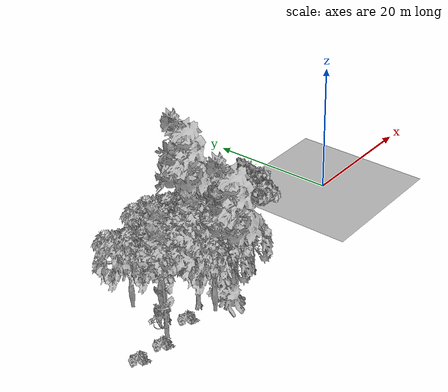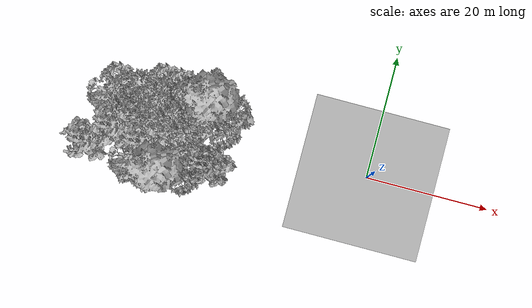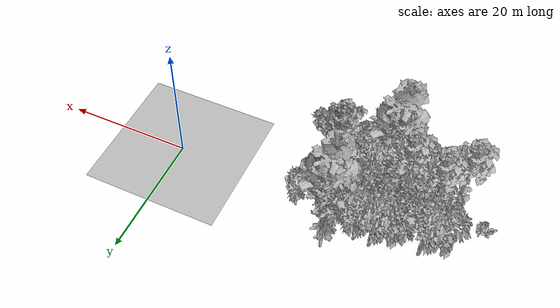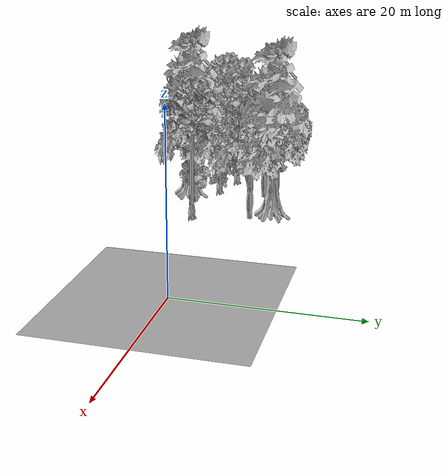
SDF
<sdf version="1.7">
 <world name="default">
  <model name="ground_plane">
   <static>1</static>
   <link name="link">
    <collision name="collision">
     <geometry><plane><normal>0 0 1</normal><size>100 100</size></plane></geometry>
     <surface><contact><ode><min_depth>0.01</min_depth><max_vel>0</max_vel></ode></contact></surface>
    </collision>
    <visual name="grass">
     <cast_shadows>0</cast_shadows>
     <geometry>
      <mesh>
       <scale>0.41000000000000003 0.41000000000000003 0.1</scale>
       <uri>file://grass_plane/meshes/grass_plane.dae</uri>
      </mesh>
     </geometry>
    </visual>
   </link>
  </model>
  <model name="Tree 58">
   <static>1</static>
   <pose>-29.136478285314066 -5.744824546744688 0 1.57079 -0 0</pose>
   <link name="link">
    <collision name="collision">
     <geometry><mesh><scale>5 5 5</scale><uri>model://tree_2/meshes/tree_2.obj</uri></mesh></geometry>
    </collision>
    <visual name="visual">
     <geometry><mesh><scale>5 5 5</scale><uri>model://tree_2/meshes/tree_2.obj</uri></mesh></geometry>
    </visual>
   </link>
  </model>
  <model name="Tree 91">
   <static>1</static>
   <pose>-30.870508727637063 1.2729692239023649 0 1.57079 -0 0</pose>
   <link name="link">
    <collision name="collision">
     <geometry><mesh><scale>5 5 5</scale><uri>model://tree_2/meshes/tree_2.obj</uri></mesh></geometry>
    </collision>
    <visual name="visual">
     <geometry><mesh><scale>5 5 5</scale><uri>model://tree_2/meshes/tree_2.obj</uri></mesh></geometry>
    </visual>
   </link>
  </model>
  <model name="Tree 101">
   <static>1</static>
   <pose>-34.530308470520154 -6.511901051801935 0 1.57079 -0 0</pose>
   <link name="link">
    <collision name="collision">
     <geometry><mesh><scale>5 5 5</scale><uri>model://tree_2/meshes/tree_2.obj</uri></mesh></geometry>
    </collision>
    <visual name="visual">
     <geometry><mesh><scale>5 5 5</scale><uri>model://tree_2/meshes/tree_2.obj</uri></mesh></geometry>
    </visual>
   </link>
  </model>
  <model name="Tree 121">
   <static>1</static>
   <pose>-26.580350504393422 5.078206684629308 0 1.57079 -0 0</pose>
   <link name="link">
    <collision name="collision">
     <geometry><mesh><scale>5 5 5</scale><uri>model://tree_4/meshes/tree_4.obj</uri></mesh></geometry>
    </collision>
    <visual name="visual">
     <geometry><mesh><scale>5 5 5</scale><uri>model://tree_4/meshes/tree_4.obj</uri></mesh></geometry>
    </visual>
   </link>
  </model>
  <model name="Tree 123">
   <static>1</static>
   <pose>-33.37134839626058 2.638206725450921 0 1.57079 -0 0</pose>
   <link name="link">
    <collision name="collision">
     <geometry><mesh><scale>5 5 5</scale><uri>model://tree_2/meshes/tree_2.obj</uri></mesh></geometry>
    </collision>
    <visual name="visual">
     <geometry><mesh><scale>5 5 5</scale><uri>model://tree_2/meshes/tree_2.obj</uri></mesh></geometry>
    </visual>
   </link>
  </model>
  <model name="Tree 157">
   <static>1</static>
   <pose>-39.60856064833061 -2.6644926782317313 0 1.57079 -0 0</pose>
   <link name="link">
    <collision name="collision">
     <geometry><mesh><scale>5 5 5</scale><uri>model://tree_9/meshes/tree_9.obj</uri></mesh></geometry>
    </collision>
    <visual name="visual">
     <geometry><mesh><scale>5 5 5</scale><uri>model://tree_9/meshes/tree_9.obj</uri></mesh></geometry>
    </visual>
   </link>
  </model>
  <model name="Tree 187">
   <static>1</static>
   <pose>-24.241845685283067 -4.757598883458279 0 1.57079 -0 0</pose>
   <link name="link">
    <collision name="collision">
     <geometry><mesh><scale>5 5 5</scale><uri>model://tree_9/meshes/tree_9.obj</uri></mesh></geometry>
    </collision>
    <visual name="visual">
     <geometry><mesh><scale>5 5 5</scale><uri>model://tree_9/meshes/tree_9.obj</uri></mesh></geometry>
    </visual>
   </link>
  </model>
  <model name="Tree 195">
   <static>1</static>
   <pose>-24.764961347988365 2.653694080876015 0 1.57079 -0 0</pose>
   <link name="link">
    <collision name="collision">
     <geometry><mesh><scale>5 5 5</scale><uri>model://tree_2/meshes/tree_2.obj</uri></mesh></geometry>
    </collision>
    <visual name="visual">
     <geometry><mesh><scale>5 5 5</scale><uri>model://tree_2/meshes/tree_2.obj</uri></mesh></geometry>
    </visual>
   </link>
  </model>
  <model name="Tree 224">
   <static>1</static>
   <pose>-24.117555800730162 -4.76062071663231 0 1.57079 -0 0</pose>
   <link name="link">
    <collision name="collision">
     <geometry><mesh><scale>5 5 5</scale><uri>model://tree_9/meshes/tree_9.obj</uri></mesh></geometry>
    </collision>
    <visual name="visual">
     <geometry><mesh><scale>5 5 5</scale><uri>model://tree_9/meshes/tree_9.obj</uri></mesh></geometry>
    </visual>
   </link>
  </model>
  <model name="Tree 236">
   <static>1</static>
   <pose>-34.77374842129693 -3.9292000744052373 0 1.57079 -0 0</pose>
   <link name="link">
    <collision name="collision">
     <geometry><mesh><scale>5 5 5</scale><uri>model://tree_9/meshes/tree_9.obj</uri></mesh></geometry>
    </collision>
    <visual name="visual">
     <geometry><mesh><scale>5 5 5</scale><uri>model://tree_9/meshes/tree_9.obj</uri></mesh></geometry>
    </visual>
   </link>
  </model>
  <model name="Tree 243">
   <static>1</static>
   <pose>-38.4408915715711 -0.5570903907103144 0 1.57079 -0 0</pose>
   <link name="link">
    <collision name="collision">
     <geometry><mesh><scale>5 5 5</scale><uri>model://tree_2/meshes/tree_2.obj</uri></mesh></geometry>
    </collision>
    <visual name="visual">
     <geometry><mesh><scale>5 5 5</scale><uri>model://tree_2/meshes/tree_2.obj</uri></mesh></geometry>
    </visual>
   </link>
  </model>
  <model name="Tree 279">
   <static>1</static>
   <pose>-32.016383882359634 -7.2504381721655875 0 1.57079 -0 0</pose>
   <link name="link">
    <collision name="collision">
     <geometry><mesh><scale>5 5 5</scale><uri>model://tree_4/meshes/tree_4.obj</uri></mesh></geometry>
    </collision>
    <visual name="visual">
     <geometry><mesh><scale>5 5 5</scale><uri>model://tree_4/meshes/tree_4.obj</uri></mesh></geometry>
    </visual>
   </link>
  </model>
  <model name="Tree 325">
   <static>1</static>
   <pose>-31.035509424820894 4.198205151836888 0 1.57079 -0 0</pose>
   <link name="link">
    <collision name="collision">
     <geometry><mesh><scale>5 5 5</scale><uri>model://tree_2/meshes/tree_2.obj</uri></mesh></geometry>
    </collision>
    <visual name="visual">
     <geometry><mesh><scale>5 5 5</scale><uri>model://tree_2/meshes/tree_2.obj</uri></mesh></geometry>
    </visual>
   </link>
  </model>
  <model name="Tree 348">
   <static>1</static>
   <pose>-42.94926867114103 -5.672406579600484 0 1.57079 -0 0</pose>
   <link name="link">
    <collision name="collision">
     <geometry><mesh><scale>5 5 5</scale><uri>model://tree_9/meshes/tree_9.obj</uri></mesh></geometry>
    </collision>
    <visual name="visual">
     <geometry><mesh><scale>5 5 5</scale><uri>model://tree_9/meshes/tree_9.obj</uri></mesh></geometry>
    </visual>
   </link>
  </model>
  <model name="Tree 364">
   <static>1</static>
   <pose>-40.4232232530459 2.6903171464660716 0 1.57079 -0 0</pose>
   <link name="link">
    <collision name="collision">
     <geometry><mesh><scale>5 5 5</scale><uri>model://tree_2/meshes/tree_2.obj</uri></mesh></geometry>
    </collision>
    <visual name="visual">
     <geometry><mesh><scale>5 5 5</scale><uri>model://tree_2/meshes/tree_2.obj</uri></mesh></geometry>
    </visual>
   </link>
  </model>
  <model name="Tree 409">
   <static>1</static>
   <pose>-32.4980487806453 -6.9439238288082095 0 1.57079 -0 0</pose>
   <link name="link">
    <collision name="collision">
     <geometry><mesh><scale>5 5 5</scale><uri>model://tree_9/meshes/tree_9.obj</uri></mesh></geometry>
    </collision>
    <visual name="visual">
     <geometry><mesh><scale>5 5 5</scale><uri>model://tree_9/meshes/tree_9.obj</uri></mesh></geometry>
    </visual>
   </link>
  </model>
  <model name="Tree 433">
   <static>1</static>
   <pose>-33.45619310741938 4.303940181511322 0 1.57079 -0 0</pose>
   <link name="link">
    <collision name="collision">
     <geometry><mesh><scale>5 5 5</scale><uri>model://tree_2/meshes/tree_2.obj</uri></mesh></geometry>
    </collision>
    <visual name="visual">
     <geometry><mesh><scale>5 5 5</scale><uri>model://tree_2/meshes/tree_2.obj</uri></mesh></geometry>
    </visual>
   </link>
  </model>
  <model name="Bush 27">
   <static>1</static>
   <pose>-32.633638954893854 -7.055354760553776 0 1.57079 -0 0</pose>
   <link name="link">
    <collision name="collision">
     <geometry><mesh><scale>2 2 2</scale><uri>model://bush_1/meshes/bush_1.obj</uri></mesh></geometry>
    </collision>
    <visual name="visual">
     <geometry><mesh><scale>5 5 5</scale><uri>model://bush_1/meshes/bush_1.obj</uri></mesh></geometry>
    </visual>
   </link>
  </model>
  <model name="Bush 34">
   <static>1</static>
   <pose>-41.37978354112701 -3.4032927753260296 0 1.57079 -0 0</pose>
   <link name="link">
    <collision name="collision">
     <geometry><mesh><scale>2 2 2</scale><uri>model://bush_4/meshes/bush_4.obj</uri></mesh></geometry>
    </collision>
    <visual name="visual">
     <geometry><mesh><scale>5 5 5</scale><uri>model://bush_4/meshes/bush_4.obj</uri></mesh></geometry>
    </visual>
   </link>
  </model>
  <model name="Bush 36">
   <static>1</static>
   <pose>-47.992988833830445 -5.4703889369878596 0 1.57079 -0 0</pose>
   <link name="link">
    <collision name="collision">
     <geometry><mesh><scale>2 2 2</scale><uri>model://bush_2/meshes/bush_2.obj</uri></mesh></geometry>
    </collision>
    <visual name="visual">
     <geometry><mesh><scale>5 5 5</scale><uri>model://bush_2/meshes/bush_2.obj</uri></mesh></geometry>
    </visual>
   </link>
  </model>
  <model name="Bush 98">
   <static>1</static>
   <pose>-44.08861671418732 -5.882767238140296 0 1.57079 -0 0</pose>
   <link name="link">
    <collision name="collision">
     <geometry><mesh><scale>2 2 2</scale><uri>model://bush_2/meshes/bush_2.obj</uri></mesh></geometry>
    </collision>
    <visual name="visual">
     <geometry><mesh><scale>5 5 5</scale><uri>model://bush_2/meshes/bush_2.obj</uri></mesh></geometry>
    </visual>
   </link>
  </model>
  <model name="Bush 104">
   <static>1</static>
   <pose>-38.29659913171088 -4.997843438376115 0 1.57079 -0 0</pose>
   <link name="link">
    <collision name="collision">
     <geometry><mesh><scale>2 2 2</scale><uri>model://bush_2/meshes/bush_2.obj</uri></mesh></geometry>
    </collision>
    <visual name="visual">
     <geometry><mesh><scale>5 5 5</scale><uri>model://bush_2/meshes/bush_2.obj</uri></mesh></geometry>
    </visual>
   </link>
  </model>
 </world>
</sdf>
